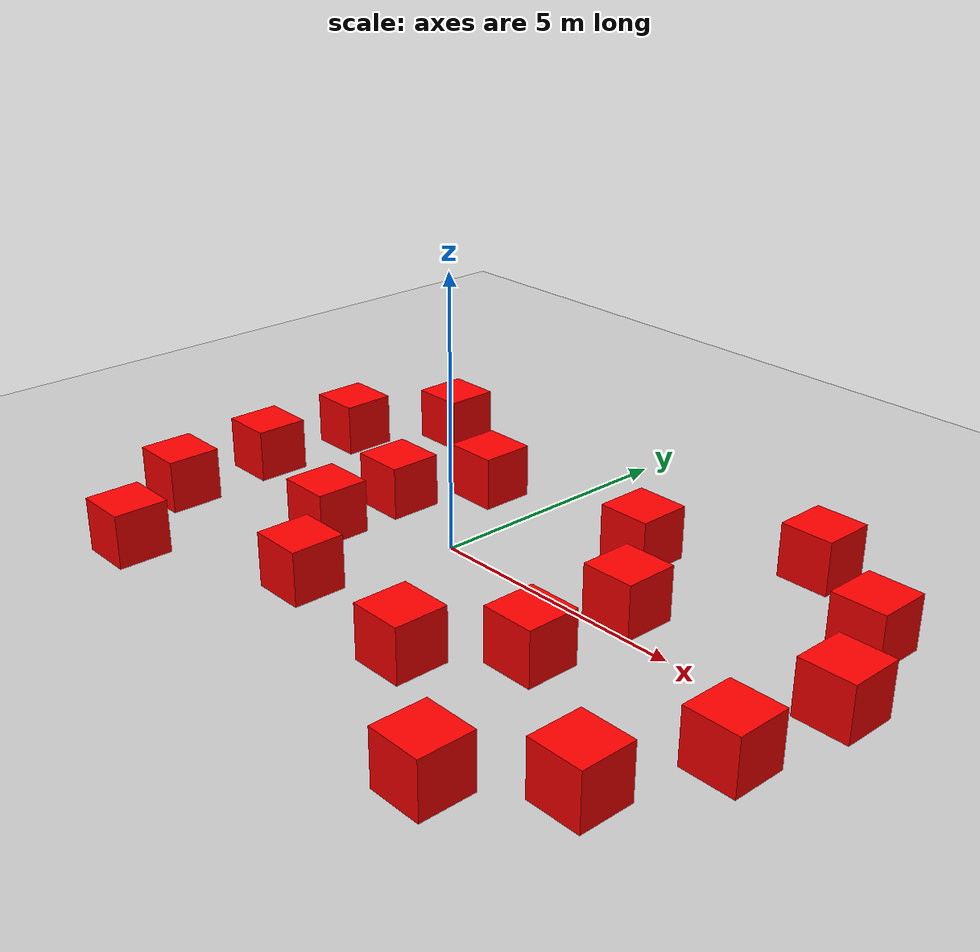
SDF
<sdf version='1.6'>
  <world name='empty'>
    <physics name='1ms' type='ignored'>
      <max_step_size>0.001</max_step_size>
      <real_time_factor>1</real_time_factor>
      <real_time_update_rate>1000</real_time_update_rate>
    </physics>
    <plugin name='gz::sim::systems::Physics' filename='gz-sim-physics-system'/>
    <plugin name='gz::sim::systems::UserCommands' filename='gz-sim-user-commands-system'/>
    <plugin name='gz::sim::systems::SceneBroadcaster' filename='gz-sim-scene-broadcaster-system'/>
    <plugin name='gz::sim::systems::Sensors' filename='gz-sim-sensors-system'>
      <render_engine>ogre2</render_engine>
    </plugin>
    <plugin name='gz::sim::systems::Contact' filename='gz-sim-contact-system'/>
    <gravity>0 0 -9.8</gravity>
    <magnetic_field>6e-06 2.3e-05 -4.2e-05</magnetic_field>
    <atmosphere type='adiabatic'/>
    <scene>
      <ambient>0.4 0.4 0.4 1</ambient>
      <background>0.7 0.7 0.7 1</background>
      <shadows>true</shadows>
    </scene>
    <model name='ground_plane'>
      <static>true</static>
      <link name='link'>
        <collision name='collision'>
          <geometry>
            <plane>
              <normal>0 0 1</normal>
              <size>100 100</size>
            </plane>
          </geometry>
          <surface>
            <friction>
              <ode/>
            </friction>
            <bounce/>
            <contact/>
          </surface>
        </collision>
        <visual name='visual'>
          <geometry>
            <plane>
              <normal>0 0 1</normal>
              <size>100 100</size>
            </plane>
          </geometry>
          <material>
            <ambient>0.8 0.8 0.8 1</ambient>
            <diffuse>0.8 0.8 0.8 1</diffuse>
            <specular>0.8 0.8 0.8 1</specular>
          </material>
        </visual>
        <pose>0 0 0 0 -0 0</pose>
        <inertial>
          <pose>0 0 0 0 -0 0</pose>
          <mass>1</mass>
          <inertia>
            <ixx>1</ixx>
            <ixy>0</ixy>
            <ixz>0</ixz>
            <iyy>1</iyy>
            <iyz>0</iyz>
            <izz>1</izz>
          </inertia>
        </inertial>
        <enable_wind>false</enable_wind>
      </link>
      <pose>0 0 0 0 -0 0</pose>
      <self_collide>false</self_collide>
    </model>
    <model name='box'>
      <pose>2.43506 2.22199 0.5 0 -0 0</pose>
      <link name='box_link'>
        <inertial>
          <inertia>
            <ixx>0.16666</ixx>
            <ixy>0</ixy>
            <ixz>0</ixz>
            <iyy>0.16666</iyy>
            <iyz>0</iyz>
            <izz>0.16666</izz>
          </inertia>
          <mass>1</mass>
          <pose>0 0 0 0 -0 0</pose>
        </inertial>
        <collision name='box_collision'>
          <geometry>
            <box>
              <size>1 1 1</size>
            </box>
          </geometry>
          <surface>
            <friction>
              <ode/>
            </friction>
            <bounce/>
            <contact/>
          </surface>
        </collision>
        <visual name='box_visual'>
          <geometry>
            <box>
              <size>1 1 1</size>
            </box>
          </geometry>
          <material>
            <ambient>0.3 0.3 0.3 1</ambient>
            <diffuse>1 0.0 0.0 1</diffuse>
            <specular>1 1 1 1</specular>
          </material>
        </visual>
        <pose>0 0 0 0 -0 0</pose>
        <enable_wind>false</enable_wind>
      </link>
      <static>false</static>
      <self_collide>false</self_collide>
    </model>
    <model name='box_0'>
      <pose>3.71948 0.475845 0.5 0 -0 0</pose>
      <link name='box_link'>
        <inertial>
          <inertia>
            <ixx>0.16666</ixx>
            <ixy>0</ixy>
            <ixz>0</ixz>
            <iyy>0.16666</iyy>
            <iyz>0</iyz>
            <izz>0.16666</izz>
          </inertia>
          <mass>1</mass>
          <pose>0 0 0 0 -0 0</pose>
        </inertial>
        <collision name='box_collision'>
          <geometry>
            <box>
              <size>1 1 1</size>
            </box>
          </geometry>
          <surface>
            <friction>
              <ode/>
            </friction>
            <bounce/>
            <contact/>
          </surface>
        </collision>
        <visual name='box_visual'>
          <geometry>
            <box>
              <size>1 1 1</size>
            </box>
          </geometry>
          <material>
            <ambient>0.3 0.3 0.3 1</ambient>
            <diffuse>1 0.0 0.0 1</diffuse>
            <specular>1 1 1 1</specular>
          </material>
        </visual>
        <pose>0 0 0 0 -0 0</pose>
        <enable_wind>false</enable_wind>
      </link>
      <static>false</static>
      <self_collide>false</self_collide>
    </model>
    <model name='box_1'>
      <pose>3.66509 -1.59386 0.5 -0 -0 -0</pose>
      <link name='box_link'>
        <inertial>
          <inertia>
            <ixx>0.16666</ixx>
            <ixy>0</ixy>
            <ixz>0</ixz>
            <iyy>0.16666</iyy>
            <iyz>0</iyz>
            <izz>0.16666</izz>
          </inertia>
          <mass>1</mass>
          <pose>0 0 0 0 -0 0</pose>
        </inertial>
        <collision name='box_collision'>
          <geometry>
            <box>
              <size>1 1 1</size>
            </box>
          </geometry>
          <surface>
            <friction>
              <ode/>
            </friction>
            <bounce/>
            <contact/>
          </surface>
        </collision>
        <visual name='box_visual'>
          <geometry>
            <box>
              <size>1 1 1</size>
            </box>
          </geometry>
          <material>
            <ambient>0.3 0.3 0.3 1</ambient>
            <diffuse>1 0.0 0.0 1</diffuse>
            <specular>1 1 1 1</specular>
          </material>
        </visual>
        <pose>0 0 0 0 -0 0</pose>
        <enable_wind>false</enable_wind>
      </link>
      <static>false</static>
      <self_collide>false</self_collide>
    </model>
    <model name='box_2'>
      <pose>2.30335 -2.99362 0.5 0 -0 0</pose>
      <link name='box_link'>
        <inertial>
          <inertia>
            <ixx>0.16666</ixx>
            <ixy>0</ixy>
            <ixz>0</ixz>
            <iyy>0.16666</iyy>
            <iyz>0</iyz>
            <izz>0.16666</izz>
          </inertia>
          <mass>1</mass>
          <pose>0 0 0 0 -0 0</pose>
        </inertial>
        <collision name='box_collision'>
          <geometry>
            <box>
              <size>1 1 1</size>
            </box>
          </geometry>
          <surface>
            <friction>
              <ode/>
            </friction>
            <bounce/>
            <contact/>
          </surface>
        </collision>
        <visual name='box_visual'>
          <geometry>
            <box>
              <size>1 1 1</size>
            </box>
          </geometry>
          <material>
            <ambient>0.3 0.3 0.3 1</ambient>
            <diffuse>1 0.0 0.0 1</diffuse>
            <specular>1 1 1 1</specular>
          </material>
        </visual>
        <pose>0 0 0 0 -0 0</pose>
        <enable_wind>false</enable_wind>
      </link>
      <static>false</static>
      <self_collide>false</self_collide>
    </model>
    <model name='box_3'>
      <pose>-1.21318 1.99515 0.5 0 -0 0</pose>
      <link name='box_link'>
        <inertial>
          <inertia>
            <ixx>0.16666</ixx>
            <ixy>0</ixy>
            <ixz>0</ixz>
            <iyy>0.16666</iyy>
            <iyz>0</iyz>
            <izz>0.16666</izz>
          </inertia>
          <mass>1</mass>
          <pose>0 0 0 0 -0 0</pose>
        </inertial>
        <collision name='box_collision'>
          <geometry>
            <box>
              <size>1 1 1</size>
            </box>
          </geometry>
          <surface>
            <friction>
              <ode/>
            </friction>
            <bounce/>
            <contact/>
          </surface>
        </collision>
        <visual name='box_visual'>
          <geometry>
            <box>
              <size>1 1 1</size>
            </box>
          </geometry>
          <material>
            <ambient>0.3 0.3 0.3 1</ambient>
            <diffuse>1 0.0 0.0 1</diffuse>
            <specular>1 1 1 1</specular>
          </material>
        </visual>
        <pose>0 0 0 0 -0 0</pose>
        <enable_wind>false</enable_wind>
      </link>
      <static>false</static>
      <self_collide>false</self_collide>
    </model>
    <model name='box_4'>
      <pose>-2.02867 0.458424 0.5 0 -0 0</pose>
      <link name='box_link'>
        <inertial>
          <inertia>
            <ixx>0.16666</ixx>
            <ixy>0</ixy>
            <ixz>0</ixz>
            <iyy>0.16666</iyy>
            <iyz>0</iyz>
            <izz>0.16666</izz>
          </inertia>
          <mass>1</mass>
          <pose>0 0 0 0 -0 0</pose>
        </inertial>
        <collision name='box_collision'>
          <geometry>
            <box>
              <size>1 1 1</size>
            </box>
          </geometry>
          <surface>
            <friction>
              <ode/>
            </friction>
            <bounce/>
            <contact/>
          </surface>
        </collision>
        <visual name='box_visual'>
          <geometry>
            <box>
              <size>1 1 1</size>
            </box>
          </geometry>
          <material>
            <ambient>0.3 0.3 0.3 1</ambient>
            <diffuse>1 0.0 0.0 1</diffuse>
            <specular>1 1 1 1</specular>
          </material>
        </visual>
        <pose>0 0 0 0 -0 0</pose>
        <enable_wind>false</enable_wind>
      </link>
      <static>false</static>
      <self_collide>false</self_collide>
    </model>
    <model name='box_5'>
      <pose>-2.01172 -1.20114 0.5 0 -0 0</pose>
      <link name='box_link'>
        <inertial>
          <inertia>
            <ixx>0.16666</ixx>
            <ixy>0</ixy>
            <ixz>0</ixz>
            <iyy>0.16666</iyy>
            <iyz>0</iyz>
            <izz>0.16666</izz>
          </inertia>
          <mass>1</mass>
          <pose>0 0 0 0 -0 0</pose>
        </inertial>
        <collision name='box_collision'>
          <geometry>
            <box>
              <size>1 1 1</size>
            </box>
          </geometry>
          <surface>
            <friction>
              <ode/>
            </friction>
            <bounce/>
            <contact/>
          </surface>
        </collision>
        <visual name='box_visual'>
          <geometry>
            <box>
              <size>1 1 1</size>
            </box>
          </geometry>
          <material>
            <ambient>0.3 0.3 0.3 1</ambient>
            <diffuse>1 0.0 0.0 1</diffuse>
            <specular>1 1 1 1</specular>
          </material>
        </visual>
        <pose>0 0 0 0 -0 0</pose>
        <enable_wind>false</enable_wind>
      </link>
      <static>false</static>
      <self_collide>false</self_collide>
    </model>
    <model name='box_6'>
      <pose>-0.60023 -2.76303 0.5 0 -0 0</pose>
      <link name='box_link'>
        <inertial>
          <inertia>
            <ixx>0.16666</ixx>
            <ixy>0</ixy>
            <ixz>0</ixz>
            <iyy>0.16666</iyy>
            <iyz>0</iyz>
            <izz>0.16666</izz>
          </inertia>
          <mass>1</mass>
          <pose>0 0 0 0 -0 0</pose>
        </inertial>
        <collision name='box_collision'>
          <geometry>
            <box>
              <size>1 1 1</size>
            </box>
          </geometry>
          <surface>
            <friction>
              <ode/>
            </friction>
            <bounce/>
            <contact/>
          </surface>
        </collision>
        <visual name='box_visual'>
          <geometry>
            <box>
              <size>1 1 1</size>
            </box>
          </geometry>
          <material>
            <ambient>0.3 0.3 0.3 1</ambient>
            <diffuse>1 0.0 0.0 1</diffuse>
            <specular>1 1 1 1</specular>
          </material>
        </visual>
        <pose>0 0 0 0 -0 0</pose>
        <enable_wind>false</enable_wind>
      </link>
      <static>false</static>
      <self_collide>false</self_collide>
    </model>
    <model name='box_7'>
      <pose>4.91633 3.95255 0.5 0 -0 0</pose>
      <link name='box_link'>
        <inertial>
          <inertia>
            <ixx>0.16666</ixx>
            <ixy>0</ixy>
            <ixz>0</ixz>
            <iyy>0.16666</iyy>
            <iyz>0</iyz>
            <izz>0.16666</izz>
          </inertia>
          <mass>1</mass>
          <pose>0 0 0 0 -0 0</pose>
        </inertial>
        <collision name='box_collision'>
          <geometry>
            <box>
              <size>1 1 1</size>
            </box>
          </geometry>
          <surface>
            <friction>
              <ode/>
            </friction>
            <bounce/>
            <contact/>
          </surface>
        </collision>
        <visual name='box_visual'>
          <geometry>
            <box>
              <size>1 1 1</size>
            </box>
          </geometry>
          <material>
            <ambient>0.3 0.3 0.3 1</ambient>
            <diffuse>1 0.0 0.0 1</diffuse>
            <specular>1 1 1 1</specular>
          </material>
        </visual>
        <pose>0 0 0 0 -0 0</pose>
        <enable_wind>false</enable_wind>
      </link>
      <static>false</static>
      <self_collide>false</self_collide>
    </model>
    <model name='box_8'>
      <pose>6.84795 2.6297 0.5 0 -0 0</pose>
      <link name='box_link'>
        <inertial>
          <inertia>
            <ixx>0.16666</ixx>
            <ixy>0</ixy>
            <ixz>0</ixz>
            <iyy>0.16666</iyy>
            <iyz>0</iyz>
            <izz>0.16666</izz>
          </inertia>
          <mass>1</mass>
          <pose>0 0 0 0 -0 0</pose>
        </inertial>
        <collision name='box_collision'>
          <geometry>
            <box>
              <size>1 1 1</size>
            </box>
          </geometry>
          <surface>
            <friction>
              <ode/>
            </friction>
            <bounce/>
            <contact/>
          </surface>
        </collision>
        <visual name='box_visual'>
          <geometry>
            <box>
              <size>1 1 1</size>
            </box>
          </geometry>
          <material>
            <ambient>0.3 0.3 0.3 1</ambient>
            <diffuse>1 0.0 0.0 1</diffuse>
            <specular>1 1 1 1</specular>
          </material>
        </visual>
        <pose>0 0 0 0 -0 0</pose>
        <enable_wind>false</enable_wind>
      </link>
      <static>false</static>
      <self_collide>false</self_collide>
    </model>
    <model name='box_9'>
      <pose>7.64599 0.73227 0.5 0 -0 0</pose>
      <link name='box_link'>
        <inertial>
          <inertia>
            <ixx>0.16666</ixx>
            <ixy>0</ixy>
            <ixz>0</ixz>
            <iyy>0.16666</iyy>
            <iyz>0</iyz>
            <izz>0.16666</izz>
          </inertia>
          <mass>1</mass>
          <pose>0 0 0 0 -0 0</pose>
        </inertial>
        <collision name='box_collision'>
          <geometry>
            <box>
              <size>1 1 1</size>
            </box>
          </geometry>
          <surface>
            <friction>
              <ode/>
            </friction>
            <bounce/>
            <contact/>
          </surface>
        </collision>
        <visual name='box_visual'>
          <geometry>
            <box>
              <size>1 1 1</size>
            </box>
          </geometry>
          <material>
            <ambient>0.3 0.3 0.3 1</ambient>
            <diffuse>1 0.0 0.0 1</diffuse>
            <specular>1 1 1 1</specular>
          </material>
        </visual>
        <pose>0 0 0 0 -0 0</pose>
        <enable_wind>false</enable_wind>
      </link>
      <static>false</static>
      <self_collide>false</self_collide>
    </model>
    <model name='box_10'>
      <pose>7.36918 -1.38515 0.5 0 -0 0</pose>
      <link name='box_link'>
        <inertial>
          <inertia>
            <ixx>0.16666</ixx>
            <ixy>0</ixy>
            <ixz>0</ixz>
            <iyy>0.16666</iyy>
            <iyz>0</iyz>
            <izz>0.16666</izz>
          </inertia>
          <mass>1</mass>
          <pose>0 0 0 0 -0 0</pose>
        </inertial>
        <collision name='box_collision'>
          <geometry>
            <box>
              <size>1 1 1</size>
            </box>
          </geometry>
          <surface>
            <friction>
              <ode/>
            </friction>
            <bounce/>
            <contact/>
          </surface>
        </collision>
        <visual name='box_visual'>
          <geometry>
            <box>
              <size>1 1 1</size>
            </box>
          </geometry>
          <material>
            <ambient>0.3 0.3 0.3 1</ambient>
            <diffuse>1 0.0 0.0 1</diffuse>
            <specular>1 1 1 1</specular>
          </material>
        </visual>
        <pose>0 0 0 0 -0 0</pose>
        <enable_wind>false</enable_wind>
      </link>
      <static>false</static>
      <self_collide>false</self_collide>
    </model>
    <model name='box_11'>
      <pose>6.51768 -3.4171 0.5 0 -0 0</pose>
      <link name='box_link'>
        <inertial>
          <inertia>
            <ixx>0.16666</ixx>
            <ixy>0</ixy>
            <ixz>0</ixz>
            <iyy>0.16666</iyy>
            <iyz>0</iyz>
            <izz>0.16666</izz>
          </inertia>
          <mass>1</mass>
          <pose>0 0 0 0 -0 0</pose>
        </inertial>
        <collision name='box_collision'>
          <geometry>
            <box>
              <size>1 1 1</size>
            </box>
          </geometry>
          <surface>
            <friction>
              <ode/>
            </friction>
            <bounce/>
            <contact/>
          </surface>
        </collision>
        <visual name='box_visual'>
          <geometry>
            <box>
              <size>1 1 1</size>
            </box>
          </geometry>
          <material>
            <ambient>0.3 0.3 0.3 1</ambient>
            <diffuse>1 0.0 0.0 1</diffuse>
            <specular>1 1 1 1</specular>
          </material>
        </visual>
        <pose>0 0 0 0 -0 0</pose>
        <enable_wind>false</enable_wind>
      </link>
      <static>false</static>
      <self_collide>false</self_collide>
    </model>
    <model name='box_12'>
      <pose>4.98347 -4.79392 0.5 0 -0 0</pose>
      <link name='box_link'>
        <inertial>
          <inertia>
            <ixx>0.16666</ixx>
            <ixy>0</ixy>
            <ixz>0</ixz>
            <iyy>0.16666</iyy>
            <iyz>0</iyz>
            <izz>0.16666</izz>
          </inertia>
          <mass>1</mass>
          <pose>0 0 0 0 -0 0</pose>
        </inertial>
        <collision name='box_collision'>
          <geometry>
            <box>
              <size>1 1 1</size>
            </box>
          </geometry>
          <surface>
            <friction>
              <ode/>
            </friction>
            <bounce/>
            <contact/>
          </surface>
        </collision>
        <visual name='box_visual'>
          <geometry>
            <box>
              <size>1 1 1</size>
            </box>
          </geometry>
          <material>
            <ambient>0.3 0.3 0.3 1</ambient>
            <diffuse>1 0.0 0.0 1</diffuse>
            <specular>1 1 1 1</specular>
          </material>
        </visual>
        <pose>0 0 0 0 -0 0</pose>
        <enable_wind>false</enable_wind>
      </link>
      <static>false</static>
      <self_collide>false</self_collide>
    </model>
    <model name='box_13'>
      <pose>-3.73367 3.3345 0.5 0 0 0</pose>
      <link name='box_link'>
        <inertial>
          <inertia>
            <ixx>0.16666</ixx>
            <ixy>0</ixy>
            <ixz>0</ixz>
            <iyy>0.16666</iyy>
            <iyz>0</iyz>
            <izz>0.16666</izz>
          </inertia>
          <mass>1</mass>
          <pose>0 0 0 0 -0 0</pose>
        </inertial>
        <collision name='box_collision'>
          <geometry>
            <box>
              <size>1 1 1</size>
            </box>
          </geometry>
          <surface>
            <friction>
              <ode/>
            </friction>
            <bounce/>
            <contact/>
          </surface>
        </collision>
        <visual name='box_visual'>
          <geometry>
            <box>
              <size>1 1 1</size>
            </box>
          </geometry>
          <material>
            <ambient>0.3 0.3 0.3 1</ambient>
            <diffuse>1 0.0 0.0 1</diffuse>
            <specular>1 1 1 1</specular>
          </material>
        </visual>
        <pose>0 0 0 0 -0 0</pose>
        <enable_wind>false</enable_wind>
      </link>
      <static>false</static>
      <self_collide>false</self_collide>
    </model>
    <model name='box_14'>
      <pose>-4.92807 1.63139 0.5 0 -0 0</pose>
      <link name='box_link'>
        <inertial>
          <inertia>
            <ixx>0.16666</ixx>
            <ixy>0</ixy>
            <ixz>0</ixz>
            <iyy>0.16666</iyy>
            <iyz>0</iyz>
            <izz>0.16666</izz>
          </inertia>
          <mass>1</mass>
          <pose>0 0 0 0 -0 0</pose>
        </inertial>
        <collision name='box_collision'>
          <geometry>
            <box>
              <size>1 1 1</size>
            </box>
          </geometry>
          <surface>
            <friction>
              <ode/>
            </friction>
            <bounce/>
            <contact/>
          </surface>
        </collision>
        <visual name='box_visual'>
          <geometry>
            <box>
              <size>1 1 1</size>
            </box>
          </geometry>
          <material>
            <ambient>0.3 0.3 0.3 1</ambient>
            <diffuse>1 0.0 0.0 1</diffuse>
            <specular>1 1 1 1</specular>
          </material>
        </visual>
        <pose>0 0 0 0 -0 0</pose>
        <enable_wind>false</enable_wind>
      </link>
      <static>false</static>
      <self_collide>false</self_collide>
    </model>
    <model name='box_15'>
      <pose>-5.0339 -0.393403 0.5 0 -0 0</pose>
      <link name='box_link'>
        <inertial>
          <inertia>
            <ixx>0.16666</ixx>
            <ixy>0</ixy>
            <ixz>0</ixz>
            <iyy>0.16666</iyy>
            <iyz>0</iyz>
            <izz>0.16666</izz>
          </inertia>
          <mass>1</mass>
          <pose>0 0 0 0 -0 0</pose>
        </inertial>
        <collision name='box_collision'>
          <geometry>
            <box>
              <size>1 1 1</size>
            </box>
          </geometry>
          <surface>
            <friction>
              <ode/>
            </friction>
            <bounce/>
            <contact/>
          </surface>
        </collision>
        <visual name='box_visual'>
          <geometry>
            <box>
              <size>1 1 1</size>
            </box>
          </geometry>
          <material>
            <ambient>0.3 0.3 0.3 1</ambient>
            <diffuse>1 0.0 0.0 1</diffuse>
            <specular>1 1 1 1</specular>
          </material>
        </visual>
        <pose>0 0 0 0 -0 0</pose>
        <enable_wind>false</enable_wind>
      </link>
      <static>false</static>
      <self_collide>false</self_collide>
    </model>
    <model name='box_16'>
      <pose>-4.9481 -2.40571 0.5 0 -0 0</pose>
      <link name='box_link'>
        <inertial>
          <inertia>
            <ixx>0.16666</ixx>
            <ixy>0</ixy>
            <ixz>0</ixz>
            <iyy>0.16666</iyy>
            <iyz>0</iyz>
            <izz>0.16666</izz>
          </inertia>
          <mass>1</mass>
          <pose>0 0 0 0 -0 0</pose>
        </inertial>
        <collision name='box_collision'>
          <geometry>
            <box>
              <size>1 1 1</size>
            </box>
          </geometry>
          <surface>
            <friction>
              <ode/>
            </friction>
            <bounce/>
            <contact/>
          </surface>
        </collision>
        <visual name='box_visual'>
          <geometry>
            <box>
              <size>1 1 1</size>
            </box>
          </geometry>
          <material>
            <ambient>0.3 0.3 0.3 1</ambient>
            <diffuse>1 0.0 0.0 1</diffuse>
            <specular>1 1 1 1</specular>
          </material>
        </visual>
        <pose>0 0 0 0 -0 0</pose>
        <enable_wind>false</enable_wind>
      </link>
      <static>false</static>
      <self_collide>false</self_collide>
    </model>
    <model name='box_16_1'>
      <pose>-3.6549 -4.24254 0.5 0 -0 0</pose>
      <link name='box_link'>
        <inertial>
          <inertia>
            <ixx>0.16666</ixx>
            <ixy>0</ixy>
            <ixz>0</ixz>
            <iyy>0.16666</iyy>
            <iyz>0</iyz>
            <izz>0.16666</izz>
          </inertia>
          <mass>1</mass>
        </inertial>
        <collision name='box_collision'>
          <geometry>
            <box>
              <size>1 1 1</size>
            </box>
          </geometry>
          <surface>
            <friction>
              <ode/>
            </friction>
            <bounce/>
            <contact/>
          </surface>
        </collision>
        <visual name='box_visual'>
          <geometry>
            <box>
              <size>1 1 1</size>
            </box>
          </geometry>
          <material>
            <ambient>0.3 0.3 0.3 1</ambient>
            <diffuse>1 0.0 0.0 1</diffuse>
            <specular>1 1 1 1</specular>
          </material>
        </visual>
      </link>
      <static>false</static>
      <self_collide>false</self_collide>
    </model>
    <light name='sun' type='directional'>
      <pose>0 0 10 0 -0 0</pose>
      <cast_shadows>true</cast_shadows>
      <intensity>1</intensity>
      <direction>-0.5 0.1 -0.9</direction>
      <diffuse>0.8 0.8 0.8 1</diffuse>
      <specular>0.2 0.2 0.2 1</specular>
      <attenuation>
        <range>1000</range>
        <linear>0.01</linear>
        <constant>0.90000000000000002</constant>
        <quadratic>0.001</quadratic>
      </attenuation>
      <spot>
        <inner_angle>0</inner_angle>
        <outer_angle>0</outer_angle>
        <falloff>0</falloff>
      </spot>
    </light>
  </world>
</sdf>
